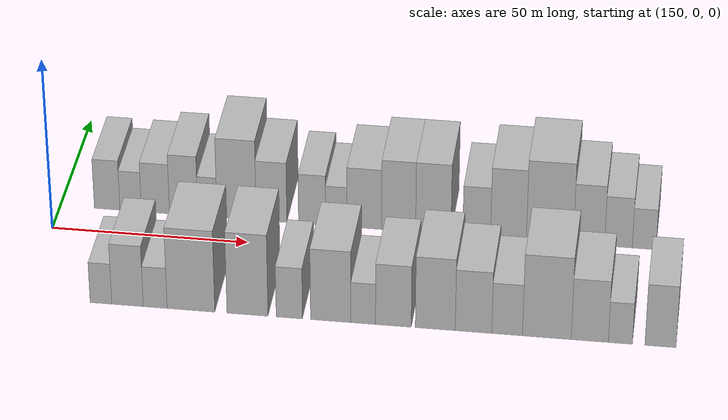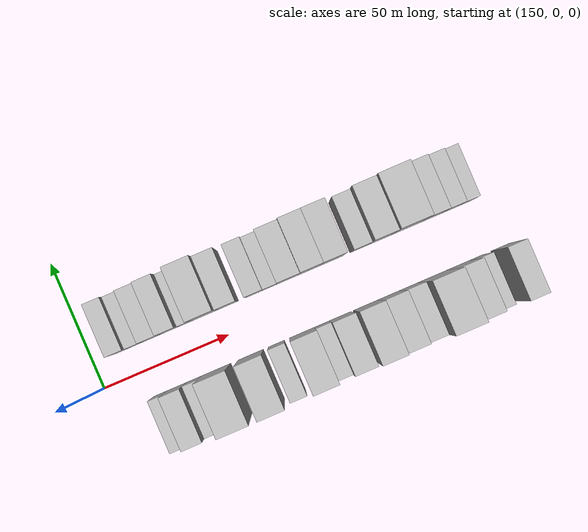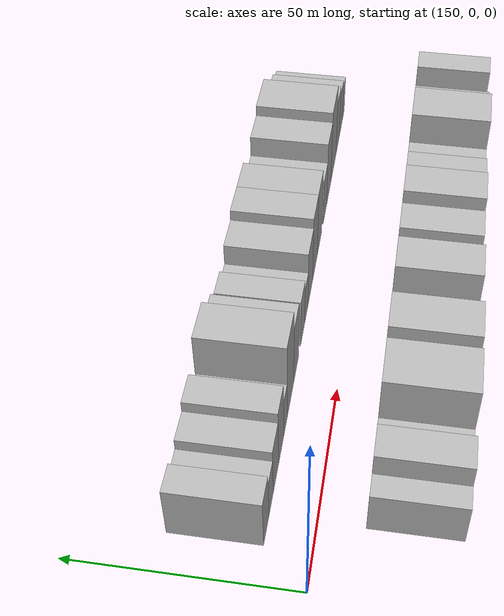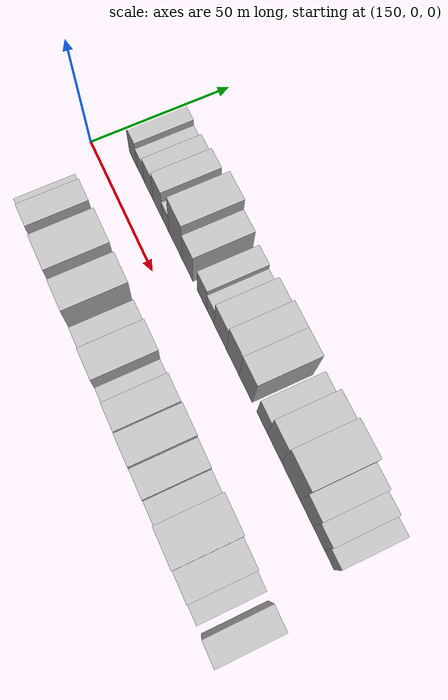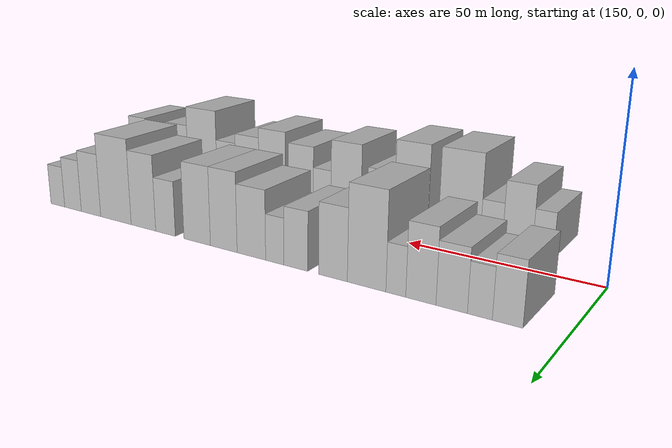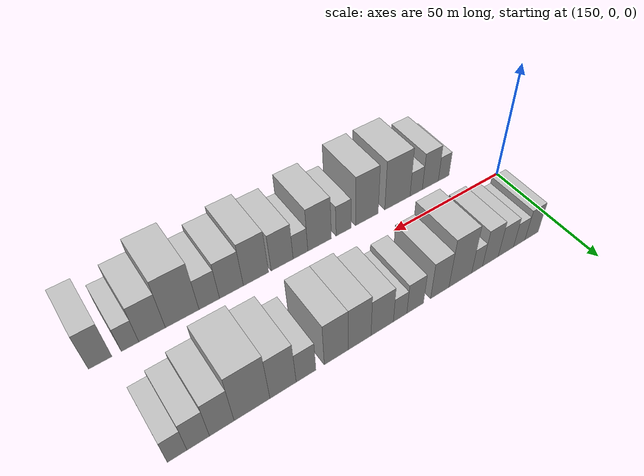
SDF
<sdf version="1.6">
 <world name="default">
  <model name="building_16">
   <static>1</static>
   <pose>162.1069 20.0000 0 0.000000 0.000000 1.570796</pose>
   <link name="link">
    <pose>0 0 7.50 0 0 0</pose>
    <collision name="collision"><geometry><box><size>20.0000 6.5975 15.0000</size></box></geometry></collision>
    <visual name="visual">
     <cast_shadows>0</cast_shadows>
     <geometry><box><size>20.0000 6.5975 15.0000</size></box></geometry>
     <material>
      <script>
       <uri>model://HANNAS_wall/materials/scripts</uri>
       <uri>model://HANNAS_wall/materials/textures</uri>
       <name>vrc/HANNAS_wall</name>
      </script>
     </material>
    </visual>
   </link>
  </model>
  <model name="building_17">
   <static>1</static>
   <pose>168.1742 20.0000 0 0.000000 0.000000 1.570796</pose>
   <link name="link">
    <pose>0 0 6.00 0 0 0</pose>
    <collision name="collision"><geometry><box><size>20.0000 5.5370 12.0000</size></box></geometry></collision>
    <visual name="visual">
     <cast_shadows>0</cast_shadows>
     <geometry><box><size>20.0000 5.5370 12.0000</size></box></geometry>
     <material>
      <script>
       <uri>model://HANNAS_wall/materials/scripts</uri>
       <uri>model://HANNAS_wall/materials/textures</uri>
       <name>vrc/HANNAS_wall</name>
      </script>
     </material>
    </visual>
   </link>
  </model>
  <model name="building_18">
   <static>1</static>
   <pose>174.5783 20.0000 0 0.000000 0.000000 1.570796</pose>
   <link name="link">
    <pose>0 0 7.50 0 0 0</pose>
    <collision name="collision"><geometry><box><size>20.0000 7.2712 15.0000</size></box></geometry></collision>
    <visual name="visual">
     <cast_shadows>0</cast_shadows>
     <geometry><box><size>20.0000 7.2712 15.0000</size></box></geometry>
     <material>
      <script>
       <uri>model://HANNAS_wall/materials/scripts</uri>
       <uri>model://HANNAS_wall/materials/textures</uri>
       <name>vrc/HANNAS_wall</name>
      </script>
     </material>
    </visual>
   </link>
  </model>
  <model name="building_19">
   <static>1</static>
   <pose>181.8571 20.0000 0 0.000000 0.000000 1.570796</pose>
   <link name="link">
    <pose>0 0 9.00 0 0 0</pose>
    <collision name="collision"><geometry><box><size>20.0000 7.2865 18.0000</size></box></geometry></collision>
    <visual name="visual">
     <cast_shadows>0</cast_shadows>
     <geometry><box><size>20.0000 7.2865 18.0000</size></box></geometry>
     <material>
      <script>
       <uri>model://HANNAS_wall/materials/scripts</uri>
       <uri>model://HANNAS_wall/materials/textures</uri>
       <name>vrc/HANNAS_wall</name>
      </script>
     </material>
    </visual>
   </link>
  </model>
  <model name="building_20">
   <static>1</static>
   <pose>187.9732 20.0000 0 0.000000 0.000000 1.570796</pose>
   <link name="link">
    <pose>0 0 6.00 0 0 0</pose>
    <collision name="collision"><geometry><box><size>20.0000 4.9458 12.0000</size></box></geometry></collision>
    <visual name="visual">
     <cast_shadows>0</cast_shadows>
     <geometry><box><size>20.0000 4.9458 12.0000</size></box></geometry>
     <material>
      <script>
       <uri>model://HANNAS_wall/materials/scripts</uri>
       <uri>model://HANNAS_wall/materials/textures</uri>
       <name>vrc/HANNAS_wall</name>
      </script>
     </material>
    </visual>
   </link>
  </model>
  <model name="building_21">
   <static>1</static>
   <pose>195.4713 20.0000 0 0.000000 0.000000 1.570796</pose>
   <link name="link">
    <pose>0 0 12.00 0 0 0</pose>
    <collision name="collision"><geometry><box><size>20.0000 10.0504 24.0000</size></box></geometry></collision>
    <visual name="visual">
     <cast_shadows>0</cast_shadows>
     <geometry><box><size>20.0000 10.0504 24.0000</size></box></geometry>
     <material>
      <script>
       <uri>model://HANNAS_wall/materials/scripts</uri>
       <uri>model://HANNAS_wall/materials/textures</uri>
       <name>vrc/HANNAS_wall</name>
      </script>
     </material>
    </visual>
   </link>
  </model>
  <model name="building_22">
   <static>1</static>
   <pose>204.4331 20.0000 0 0.000000 0.000000 1.570796</pose>
   <link name="link">
    <pose>0 0 9.00 0 0 0</pose>
    <collision name="collision"><geometry><box><size>20.0000 7.8732 18.0000</size></box></geometry></collision>
    <visual name="visual">
     <cast_shadows>0</cast_shadows>
     <geometry><box><size>20.0000 7.8732 18.0000</size></box></geometry>
     <material>
      <script>
       <uri>model://HANNAS_wall/materials/scripts</uri>
       <uri>model://HANNAS_wall/materials/textures</uri>
       <name>vrc/HANNAS_wall</name>
      </script>
     </material>
    </visual>
   </link>
  </model>
  <model name="building_23">
   <static>1</static>
   <pose>214.8274 20.0000 0 0.000000 0.000000 1.570796</pose>
   <link name="link">
    <pose>0 0 7.50 0 0 0</pose>
    <collision name="collision"><geometry><box><size>20.0000 6.9155 15.0000</size></box></geometry></collision>
    <visual name="visual">
     <cast_shadows>0</cast_shadows>
     <geometry><box><size>20.0000 6.9155 15.0000</size></box></geometry>
     <material>
      <script>
       <uri>model://HANNAS_wall/materials/scripts</uri>
       <uri>model://HANNAS_wall/materials/textures</uri>
       <name>vrc/HANNAS_wall</name>
      </script>
     </material>
    </visual>
   </link>
  </model>
  <model name="building_24">
   <static>1</static>
   <pose>221.0099 20.0000 0 0.000000 0.000000 1.570796</pose>
   <link name="link">
    <pose>0 0 6.00 0 0 0</pose>
    <collision name="collision"><geometry><box><size>20.0000 5.4495 12.0000</size></box></geometry></collision>
    <visual name="visual">
     <cast_shadows>0</cast_shadows>
     <geometry><box><size>20.0000 5.4495 12.0000</size></box></geometry>
     <material>
      <script>
       <uri>model://HANNAS_wall/materials/scripts</uri>
       <uri>model://HANNAS_wall/materials/textures</uri>
       <name>vrc/HANNAS_wall</name>
      </script>
     </material>
    </visual>
   </link>
  </model>
  <model name="building_25">
   <static>1</static>
   <pose>228.1481 20.0000 0 0.000000 0.000000 1.570796</pose>
   <link name="link">
    <pose>0 0 9.00 0 0 0</pose>
    <collision name="collision"><geometry><box><size>20.0000 8.8268 18.0000</size></box></geometry></collision>
    <visual name="visual">
     <cast_shadows>0</cast_shadows>
     <geometry><box><size>20.0000 8.8268 18.0000</size></box></geometry>
     <material>
      <script>
       <uri>model://HANNAS_wall/materials/scripts</uri>
       <uri>model://HANNAS_wall/materials/textures</uri>
       <name>vrc/HANNAS_wall</name>
      </script>
     </material>
    </visual>
   </link>
  </model>
  <model name="building_26">
   <static>1</static>
   <pose>236.8803 20.0000 0 0.000000 0.000000 1.570796</pose>
   <link name="link">
    <pose>0 0 10.50 0 0 0</pose>
    <collision name="collision"><geometry><box><size>20.0000 8.6376 21.0000</size></box></geometry></collision>
    <visual name="visual">
     <cast_shadows>0</cast_shadows>
     <geometry><box><size>20.0000 8.6376 21.0000</size></box></geometry>
     <material>
      <script>
       <uri>model://HANNAS_wall/materials/scripts</uri>
       <uri>model://HANNAS_wall/materials/textures</uri>
       <name>vrc/HANNAS_wall</name>
      </script>
     </material>
    </visual>
   </link>
  </model>
  <model name="building_27">
   <static>1</static>
   <pose>245.6707 20.0000 0 0.000000 0.000000 1.570796</pose>
   <link name="link">
    <pose>0 0 10.50 0 0 0</pose>
    <collision name="collision"><geometry><box><size>20.0000 8.9432 21.0000</size></box></geometry></collision>
    <visual name="visual">
     <cast_shadows>0</cast_shadows>
     <geometry><box><size>20.0000 8.9432 21.0000</size></box></geometry>
     <material>
      <script>
       <uri>model://HANNAS_wall/materials/scripts</uri>
       <uri>model://HANNAS_wall/materials/textures</uri>
       <name>vrc/HANNAS_wall</name>
      </script>
     </material>
    </visual>
   </link>
  </model>
  <model name="building_28">
   <static>1</static>
   <pose>256.6422 20.0000 0 0.000000 0.000000 1.570796</pose>
   <link name="link">
    <pose>0 0 7.50 0 0 0</pose>
    <collision name="collision"><geometry><box><size>20.0000 6.9999 15.0000</size></box></geometry></collision>
    <visual name="visual">
     <cast_shadows>0</cast_shadows>
     <geometry><box><size>20.0000 6.9999 15.0000</size></box></geometry>
     <material>
      <script>
       <uri>model://HANNAS_wall/materials/scripts</uri>
       <uri>model://HANNAS_wall/materials/textures</uri>
       <name>vrc/HANNAS_wall</name>
      </script>
     </material>
    </visual>
   </link>
  </model>
  <model name="building_29">
   <static>1</static>
   <pose>264.6668 20.0000 0 0.000000 0.000000 1.570796</pose>
   <link name="link">
    <pose>0 0 10.50 0 0 0</pose>
    <collision name="collision"><geometry><box><size>20.0000 9.0493 21.0000</size></box></geometry></collision>
    <visual name="visual">
     <cast_shadows>0</cast_shadows>
     <geometry><box><size>20.0000 9.0493 21.0000</size></box></geometry>
     <material>
      <script>
       <uri>model://HANNAS_wall/materials/scripts</uri>
       <uri>model://HANNAS_wall/materials/textures</uri>
       <name>vrc/HANNAS_wall</name>
      </script>
     </material>
    </visual>
   </link>
  </model>
  <model name="building_30">
   <static>1</static>
   <pose>275.1090 20.0000 0 0.000000 0.000000 1.570796</pose>
   <link name="link">
    <pose>0 0 12.00 0 0 0</pose>
    <collision name="collision"><geometry><box><size>20.0000 11.8351 24.0000</size></box></geometry></collision>
    <visual name="visual">
     <cast_shadows>0</cast_shadows>
     <geometry><box><size>20.0000 11.8351 24.0000</size></box></geometry>
     <material>
      <script>
       <uri>model://HANNAS_wall/materials/scripts</uri>
       <uri>model://HANNAS_wall/materials/textures</uri>
       <name>vrc/HANNAS_wall</name>
      </script>
     </material>
    </visual>
   </link>
  </model>
  <model name="building_31">
   <static>1</static>
   <pose>284.9398 20.0000 0 0.000000 0.000000 1.570796</pose>
   <link name="link">
    <pose>0 0 9.00 0 0 0</pose>
    <collision name="collision"><geometry><box><size>20.0000 7.8267 18.0000</size></box></geometry></collision>
    <visual name="visual">
     <cast_shadows>0</cast_shadows>
     <geometry><box><size>20.0000 7.8267 18.0000</size></box></geometry>
     <material>
      <script>
       <uri>model://HANNAS_wall/materials/scripts</uri>
       <uri>model://HANNAS_wall/materials/textures</uri>
       <name>vrc/HANNAS_wall</name>
      </script>
     </material>
    </visual>
   </link>
  </model>
  <model name="building_32">
   <static>1</static>
   <pose>292.3297 20.0000 0 0.000000 0.000000 1.570796</pose>
   <link name="link">
    <pose>0 0 7.50 0 0 0</pose>
    <collision name="collision"><geometry><box><size>20.0000 6.9531 15.0000</size></box></geometry></collision>
    <visual name="visual">
     <cast_shadows>0</cast_shadows>
     <geometry><box><size>20.0000 6.9531 15.0000</size></box></geometry>
     <material>
      <script>
       <uri>model://HANNAS_wall/materials/scripts</uri>
       <uri>model://HANNAS_wall/materials/textures</uri>
       <name>vrc/HANNAS_wall</name>
      </script>
     </material>
    </visual>
   </link>
  </model>
  <model name="building_33">
   <static>1</static>
   <pose>298.7675 20.0000 0 0.000000 0.000000 1.570796</pose>
   <link name="link">
    <pose>0 0 6.00 0 0 0</pose>
    <collision name="collision"><geometry><box><size>20.0000 5.9225 12.0000</size></box></geometry></collision>
    <visual name="visual">
     <cast_shadows>0</cast_shadows>
     <geometry><box><size>20.0000 5.9225 12.0000</size></box></geometry>
     <material>
      <script>
       <uri>model://HANNAS_wall/materials/scripts</uri>
       <uri>model://HANNAS_wall/materials/textures</uri>
       <name>vrc/HANNAS_wall</name>
      </script>
     </material>
    </visual>
   </link>
  </model>
  <model name="building_51">
   <static>1</static>
   <pose>168.3621 -20.0000 0 0.000000 0.000000 1.570796</pose>
   <link name="link">
    <pose>0 0 6.00 0 0 0</pose>
    <collision name="collision"><geometry><box><size>20.0000 5.3583 12.0000</size></box></geometry></collision>
    <visual name="visual">
     <cast_shadows>0</cast_shadows>
     <geometry><box><size>20.0000 5.3583 12.0000</size></box></geometry>
     <material>
      <script>
       <uri>model://HANNAS_wall/materials/scripts</uri>
       <uri>model://HANNAS_wall/materials/textures</uri>
       <name>vrc/HANNAS_wall</name>
      </script>
     </material>
    </visual>
   </link>
  </model>
  <model name="building_52">
   <static>1</static>
   <pose>174.9521 -20.0000 0 0.000000 0.000000 1.570796</pose>
   <link name="link">
    <pose>0 0 9.00 0 0 0</pose>
    <collision name="collision"><geometry><box><size>20.0000 7.8217 18.0000</size></box></geometry></collision>
    <visual name="visual">
     <cast_shadows>0</cast_shadows>
     <geometry><box><size>20.0000 7.8217 18.0000</size></box></geometry>
     <material>
      <script>
       <uri>model://HANNAS_wall/materials/scripts</uri>
       <uri>model://HANNAS_wall/materials/textures</uri>
       <name>vrc/HANNAS_wall</name>
      </script>
     </material>
    </visual>
   </link>
  </model>
  <model name="building_53">
   <static>1</static>
   <pose>181.8191 -20.0000 0 0.000000 0.000000 1.570796</pose>
   <link name="link">
    <pose>0 0 6.00 0 0 0</pose>
    <collision name="collision"><geometry><box><size>20.0000 5.9123 12.0000</size></box></geometry></collision>
    <visual name="visual">
     <cast_shadows>0</cast_shadows>
     <geometry><box><size>20.0000 5.9123 12.0000</size></box></geometry>
     <material>
      <script>
       <uri>model://HANNAS_wall/materials/scripts</uri>
       <uri>model://HANNAS_wall/materials/textures</uri>
       <name>vrc/HANNAS_wall</name>
      </script>
     </material>
    </visual>
   </link>
  </model>
  <model name="building_54">
   <static>1</static>
   <pose>190.6696 -20.0000 0 0.000000 0.000000 1.570796</pose>
   <link name="link">
    <pose>0 0 12.00 0 0 0</pose>
    <collision name="collision"><geometry><box><size>20.0000 11.7887 24.0000</size></box></geometry></collision>
    <visual name="visual">
     <cast_shadows>0</cast_shadows>
     <geometry><box><size>20.0000 11.7887 24.0000</size></box></geometry>
     <material>
      <script>
       <uri>model://HANNAS_wall/materials/scripts</uri>
       <uri>model://HANNAS_wall/materials/textures</uri>
       <name>vrc/HANNAS_wall</name>
      </script>
     </material>
    </visual>
   </link>
  </model>
  <model name="building_55">
   <static>1</static>
   <pose>204.6117 -20.0000 0 0.000000 0.000000 1.570796</pose>
   <link name="link">
    <pose>0 0 12.00 0 0 0</pose>
    <collision name="collision"><geometry><box><size>20.0000 10.0955 24.0000</size></box></geometry></collision>
    <visual name="visual">
     <cast_shadows>0</cast_shadows>
     <geometry><box><size>20.0000 10.0955 24.0000</size></box></geometry>
     <material>
      <script>
       <uri>model://HANNAS_wall/materials/scripts</uri>
       <uri>model://HANNAS_wall/materials/textures</uri>
       <name>vrc/HANNAS_wall</name>
      </script>
     </material>
    </visual>
   </link>
  </model>
  <model name="building_56">
   <static>1</static>
   <pose>214.8852 -20.0000 0 0.000000 0.000000 1.570796</pose>
   <link name="link">
    <pose>0 0 7.50 0 0 0</pose>
    <collision name="collision"><geometry><box><size>20.0000 6.4516 15.0000</size></box></geometry></collision>
    <visual name="visual">
     <cast_shadows>0</cast_shadows>
     <geometry><box><size>20.0000 6.4516 15.0000</size></box></geometry>
     <material>
      <script>
       <uri>model://HANNAS_wall/materials/scripts</uri>
       <uri>model://HANNAS_wall/materials/textures</uri>
       <name>vrc/HANNAS_wall</name>
      </script>
     </material>
    </visual>
   </link>
  </model>
  <model name="building_57">
   <static>1</static>
   <pose>225.0558 -20.0000 0 0.000000 0.000000 1.570796</pose>
   <link name="link">
    <pose>0 0 10.50 0 0 0</pose>
    <collision name="collision"><geometry><box><size>20.0000 9.8895 21.0000</size></box></geometry></collision>
    <visual name="visual">
     <cast_shadows>0</cast_shadows>
     <geometry><box><size>20.0000 9.8895 21.0000</size></box></geometry>
     <material>
      <script>
       <uri>model://HANNAS_wall/materials/scripts</uri>
       <uri>model://HANNAS_wall/materials/textures</uri>
       <name>vrc/HANNAS_wall</name>
      </script>
     </material>
    </visual>
   </link>
  </model>
  <model name="building_58">
   <static>1</static>
   <pose>232.9871 -20.0000 0 0.000000 0.000000 1.570796</pose>
   <link name="link">
    <pose>0 0 6.00 0 0 0</pose>
    <collision name="collision"><geometry><box><size>20.0000 5.9731 12.0000</size></box></geometry></collision>
    <visual name="visual">
     <cast_shadows>0</cast_shadows>
     <geometry><box><size>20.0000 5.9731 12.0000</size></box></geometry>
     <material>
      <script>
       <uri>model://HANNAS_wall/materials/scripts</uri>
       <uri>model://HANNAS_wall/materials/textures</uri>
       <name>vrc/HANNAS_wall</name>
      </script>
     </material>
    </visual>
   </link>
  </model>
  <model name="building_59">
   <static>1</static>
   <pose>240.3480 -20.0000 0 0.000000 0.000000 1.570796</pose>
   <link name="link">
    <pose>0 0 9.00 0 0 0</pose>
    <collision name="collision"><geometry><box><size>20.0000 8.7487 18.0000</size></box></geometry></collision>
    <visual name="visual">
     <cast_shadows>0</cast_shadows>
     <geometry><box><size>20.0000 8.7487 18.0000</size></box></geometry>
     <material>
      <script>
       <uri>model://HANNAS_wall/materials/scripts</uri>
       <uri>model://HANNAS_wall/materials/textures</uri>
       <name>vrc/HANNAS_wall</name>
      </script>
     </material>
    </visual>
   </link>
  </model>
  <model name="building_60">
   <static>1</static>
   <pose>250.5656 -20.0000 0 0.000000 0.000000 1.570796</pose>
   <link name="link">
    <pose>0 0 10.50 0 0 0</pose>
    <collision name="collision"><geometry><box><size>20.0000 9.6866 21.0000</size></box></geometry></collision>
    <visual name="visual">
     <cast_shadows>0</cast_shadows>
     <geometry><box><size>20.0000 9.6866 21.0000</size></box></geometry>
     <material>
      <script>
       <uri>model://HANNAS_wall/materials/scripts</uri>
       <uri>model://HANNAS_wall/materials/textures</uri>
       <name>vrc/HANNAS_wall</name>
      </script>
     </material>
    </visual>
   </link>
  </model>
  <model name="building_61">
   <static>1</static>
   <pose>259.8431 -20.0000 0 0.000000 0.000000 1.570796</pose>
   <link name="link">
    <pose>0 0 9.00 0 0 0</pose>
    <collision name="collision"><geometry><box><size>20.0000 8.8684 18.0000</size></box></geometry></collision>
    <visual name="visual">
     <cast_shadows>0</cast_shadows>
     <geometry><box><size>20.0000 8.8684 18.0000</size></box></geometry>
     <material>
      <script>
       <uri>model://HANNAS_wall/materials/scripts</uri>
       <uri>model://HANNAS_wall/materials/textures</uri>
       <name>vrc/HANNAS_wall</name>
      </script>
     </material>
    </visual>
   </link>
  </model>
  <model name="building_62">
   <static>1</static>
   <pose>267.9895 -20.0000 0 0.000000 0.000000 1.570796</pose>
   <link name="link">
    <pose>0 0 7.50 0 0 0</pose>
    <collision name="collision"><geometry><box><size>20.0000 7.4243 15.0000</size></box></geometry></collision>
    <visual name="visual">
     <cast_shadows>0</cast_shadows>
     <geometry><box><size>20.0000 7.4243 15.0000</size></box></geometry>
     <material>
      <script>
       <uri>model://HANNAS_wall/materials/scripts</uri>
       <uri>model://HANNAS_wall/materials/textures</uri>
       <name>vrc/HANNAS_wall</name>
      </script>
     </material>
    </visual>
   </link>
  </model>
  <model name="building_63">
   <static>1</static>
   <pose>277.5924 -20.0000 0 0.000000 0.000000 1.570796</pose>
   <link name="link">
    <pose>0 0 12.00 0 0 0</pose>
    <collision name="collision"><geometry><box><size>20.0000 11.7815 24.0000</size></box></geometry></collision>
    <visual name="visual">
     <cast_shadows>0</cast_shadows>
     <geometry><box><size>20.0000 11.7815 24.0000</size></box></geometry>
     <material>
      <script>
       <uri>model://HANNAS_wall/materials/scripts</uri>
       <uri>model://HANNAS_wall/materials/textures</uri>
       <name>vrc/HANNAS_wall</name>
      </script>
     </material>
    </visual>
   </link>
  </model>
  <model name="building_64">
   <static>1</static>
   <pose>287.9507 -20.0000 0 0.000000 0.000000 1.570796</pose>
   <link name="link">
    <pose>0 0 9.00 0 0 0</pose>
    <collision name="collision"><geometry><box><size>20.0000 8.9352 18.0000</size></box></geometry></collision>
    <visual name="visual">
     <cast_shadows>0</cast_shadows>
     <geometry><box><size>20.0000 8.9352 18.0000</size></box></geometry>
     <material>
      <script>
       <uri>model://HANNAS_wall/materials/scripts</uri>
       <uri>model://HANNAS_wall/materials/textures</uri>
       <name>vrc/HANNAS_wall</name>
      </script>
     </material>
    </visual>
   </link>
  </model>
  <model name="building_65">
   <static>1</static>
   <pose>295.3069 -20.0000 0 0.000000 0.000000 1.570796</pose>
   <link name="link">
    <pose>0 0 6.00 0 0 0</pose>
    <collision name="collision"><geometry><box><size>20.0000 5.7771 12.0000</size></box></geometry></collision>
    <visual name="visual">
     <cast_shadows>0</cast_shadows>
     <geometry><box><size>20.0000 5.7771 12.0000</size></box></geometry>
     <material>
      <script>
       <uri>model://HANNAS_wall/materials/scripts</uri>
       <uri>model://HANNAS_wall/materials/textures</uri>
       <name>vrc/HANNAS_wall</name>
      </script>
     </material>
    </visual>
   </link>
  </model>
  <model name="building_66">
   <static>1</static>
   <pose>304.9203 -20.0000 0 0.000000 0.000000 1.570796</pose>
   <link name="link">
    <pose>0 0 9.00 0 0 0</pose>
    <collision name="collision"><geometry><box><size>20.0000 7.4498 18.0000</size></box></geometry></collision>
    <visual name="visual">
     <cast_shadows>0</cast_shadows>
     <geometry><box><size>20.0000 7.4498 18.0000</size></box></geometry>
     <material>
      <script>
       <uri>model://HANNAS_wall/materials/scripts</uri>
       <uri>model://HANNAS_wall/materials/textures</uri>
       <name>vrc/HANNAS_wall</name>
      </script>
     </material>
    </visual>
   </link>
  </model>
 </world>
</sdf>
